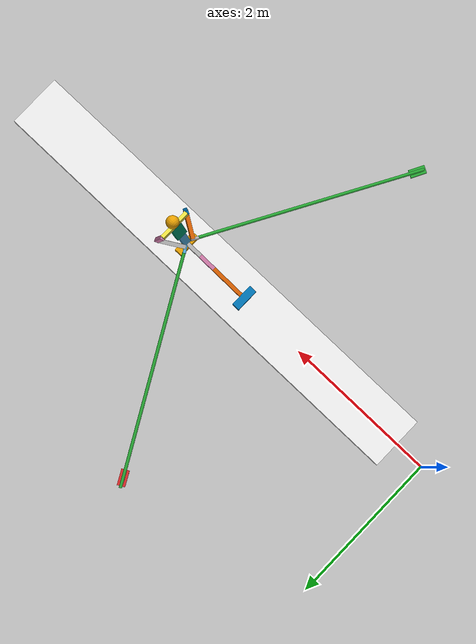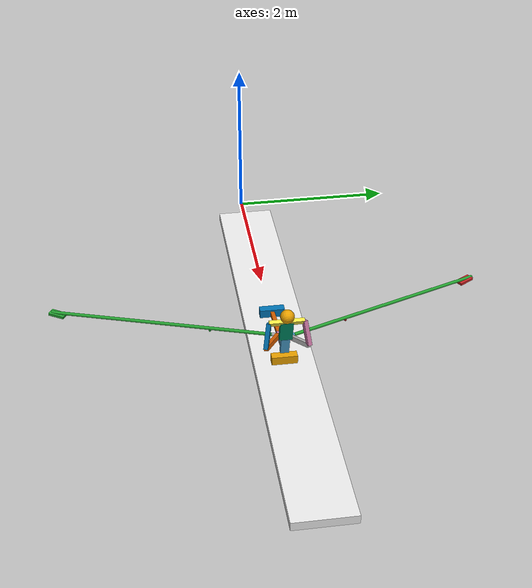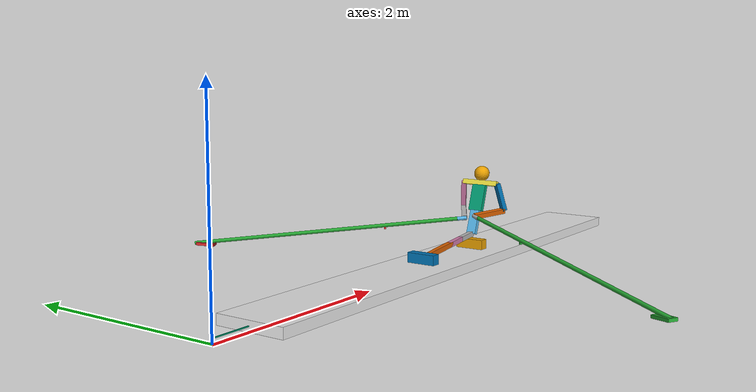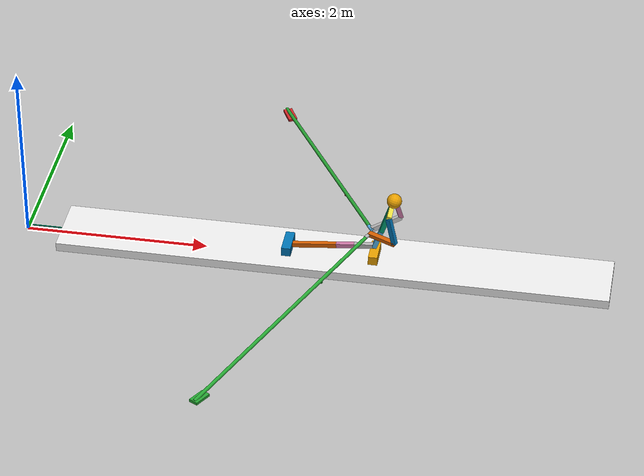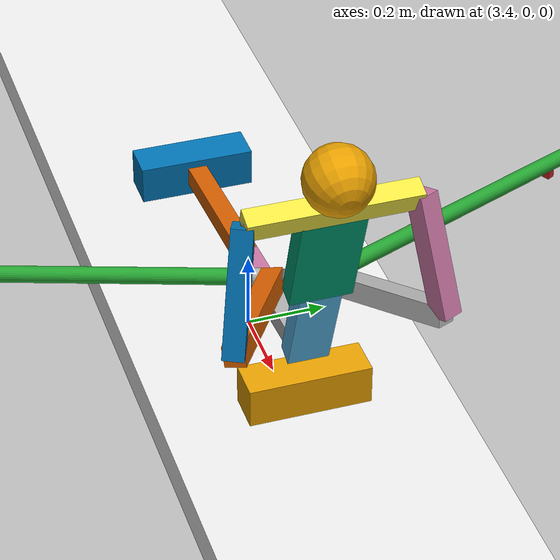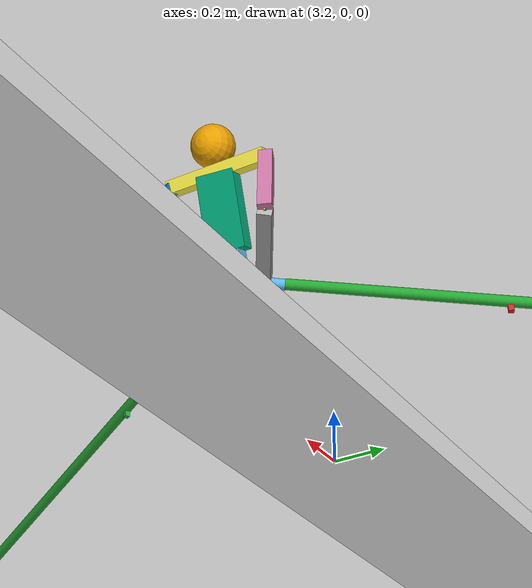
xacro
<?xml version="1.0" ?>

<robot name="myboat"  xmlns:xacro="http://www.ros.org/wiki/xacro">

  <!-- Set some joints to fixed when recreating the kinematic loops again -->
  <xacro:arg name="reconnectloops" default="false" />
  <xacro:if value="$(arg reconnectloops)">
    <xacro:property name="course_type" value="fixed" />
    <xacro:property name="sliding_type" value="fixed" />
    <xacro:property name="hip2_type" value="fixed" />
    <xacro:property name="starboard_rowlock_type" value="fixed" />
    <xacro:property name="port_rowlock_type" value="fixed" />
    <xacro:property name="starboard_oar_type" value="fixed" />
    <xacro:property name="port_oar_type" value="fixed" />
  </xacro:if>
  <xacro:unless value="$(arg reconnectloops)">
    <xacro:property name="course_type" value="prismatic" />
    <xacro:property name="sliding_type" value="prismatic" />
    <xacro:property name="hip2_type" value="revolute" />
    <xacro:property name="starboard_rowlock_type" value="revolute" />
    <xacro:property name="port_rowlock_type" value="revolute" />
    <xacro:property name="starboard_oar_type" value="revolute" />
    <xacro:property name="port_oar_type" value="revolute" />
  </xacro:unless>

  <!-- Import all Gazebo-customization elements, including Gazebo colors -->
  <xacro:include filename="$(find boot4_description)/urdf/boot.gazebo" />
  <!-- Import Rviz colors -->
  <xacro:include filename="$(find boot4_description)/urdf/materials.xacro" />

  <!-- parameters that can be configured -->
  <xacro:include filename="$(find boot4_description)/config/param.xacro" />

  <joint name="the_course" type="${course_type}">
    <parent link="world"/>
    <child link="l1"/>
    <origin xyz="0 0 0.0" rpy="0 0 0"/>
    <dynamics damping="0.005" />
    <axis xyz="1 0 0"/>
    <limit effort="101.0" lower="0" upper="100" velocity="0.5"/>
  </joint>

  <joint name="rev1" type="revolute">
    <parent link="l1"/>
    <child link="l2"/>
    <origin xyz="0.0 0 0.05" rpy="0 ${pi/2} 0"/>
    <dynamics damping="0.005" />
    <axis xyz="0 1 0"/>
    <limit effort="101.0" lower="-1" upper="1" velocity="1.0"/>
  </joint>

  <joint name="rev2" type="revolute">
    <parent link="l2"/>
    <child link="skiff"/>
    <origin xyz="0.0 0.0 0.4" rpy="${pi} ${pi/2} 0"/>
    <dynamics damping="0.005" />
    <axis xyz="0 1 0"/>
    <limit effort="101.0" lower="-1" upper="1" velocity="1.0"/>
  </joint>

  <joint name="starboard_rowlock" type="${starboard_rowlock_type}">
    <parent link="skiff"/>
    <child link="starboard_rowlock_l"/>
    <origin rpy="0.0  0.0 ${starboard_rowlock}" xyz="-3 ${span/2} 0.27"/>
    <dynamics damping="0.005" />
    <axis xyz="0 0 1"/>
    <limit effort="101.0" lower="-0.4" upper="2.0" velocity="1.0"/>
  </joint>

  <joint name="port_rowlock" type="${port_rowlock_type}">
    <parent link="skiff"/>
    <child link="port_rowlock_l"/>
    <origin rpy="0.0  0.0 ${port_rowlock}" xyz="-3 -${span/2} 0.25"/>
    <dynamics damping="0.005" />
    <axis xyz="0 0 1"/>
    <limit effort="101.0" lower="-2.0" upper="0.4" velocity="1.0"/>
  </joint>

  <joint name="starboard_oar" type="${starboard_oar_type}">
    <parent link="starboard_rowlock_l"/>
    <child link="starboard_oar_l"/>
    <origin rpy="0.0  ${pi/2+starboard_oar} -${pi/2}" xyz="0.0 0.0   0.02"/>
    <dynamics damping="0.005" />
    <axis xyz="0 1 0"/>
    <limit effort="101.0" lower="-0.4" upper="0.1" velocity="1.0"/>
  </joint>

  <joint name="port_oar" type="${port_oar_type}">
    <parent link="port_rowlock_l"/>
    <child link="port_oar_l"/>
    <origin rpy="0.0  ${pi/2+port_oar} -${pi/2}" xyz="0.0 0.0   0.02"/>
    <dynamics damping="0.005" />
    <axis xyz="0 1 0"/>
    <limit effort="101.0" lower="-0.1" upper="0.4" velocity="1.0"/>
  </joint>

  <joint name="starboard_blade" type="revolute">
    <parent link="starboard_oar_l"/>
    <child link="starboard_blade_l"/>
    <origin rpy="0  ${starboard_blade}  0.0" xyz="0.0 0.0   -${outer}"/>
    <dynamics damping="0.005" />
    <axis xyz="0 1 0"/>
    <limit effort="101.0" lower="-0.4" upper="0.4" velocity="1.0"/>
  </joint>

  <joint name="port_blade" type="revolute">
    <parent link="port_oar_l"/>
    <child link="port_blade_l"/>
    <origin rpy="0.0  ${port_blade} 0.0" xyz="0.0 0.0   ${outer}"/>
    <dynamics damping="0.005" />
    <axis xyz="0 1 0"/>
    <limit effort="101.0" lower="-0.4" upper="0.4" velocity="1.0"/>
  </joint>

  <!-- Rower joints -->

  <joint name="sk_fp" type="fixed">
    <parent link="skiff"/>
    <child link="footplate"/>
    <origin rpy="0.0  0 0.0" xyz="-2.5 0.0  0.1"/>
    <dynamics damping="0.005" />
    <limit effort="101.0" lower="-0.4" upper="0.4" velocity="1.0"/>
  </joint>

  <joint name="sliding" type="${sliding_type}">  <!-- prismatic -->
    <parent link="skiff"/>
    <child link="seat"/>
    <origin rpy="0 0 0" xyz="-3.44455 0.0 0.1"/>
    <dynamics damping="0.005" />
    <axis xyz="1 0 0"/>
    <limit effort="101.0" lower="-0.1" upper="0.8" velocity="0.5"/>
  </joint>

  <joint name="fp_ll" type="revolute">
    <parent link="footplate"/>
    <child link="lowerleg"/>
    <origin rpy="0.0  0.1071 0.0" xyz="0.0 0.0   0.0"/>
    <dynamics damping="0.005" />
    <axis xyz="0 1 0"/>
    <limit effort="101.0" lower="0.0" upper="${pi/2}" velocity="1.0"/>
  </joint>

  <joint name="knee" type="revolute">
    <parent link="lowerleg"/>
    <child link="upperleg_1"/>
    <origin rpy="0.0  0 0.0" xyz="-0.5 0.0   0.0"/>
    <dynamics damping="0.005" />
    <axis xyz="0 1 0"/>
    <limit effort="1000.0" lower="-3.1" upper="0" velocity="1.0"/>
  </joint>

  <joint name="hip1" type="revolute">
    <parent link="seat"/>
    <child link="upperleg_2"/>
    <origin rpy="0  0.1001675 0.0" xyz="0.0 0.0   0.1"/>
    <dynamics damping="0.005" />
    <axis xyz="0 1 0"/>
    <limit effort="101.0" lower="-1.6" upper="0" velocity="1.0"/>
  </joint>

  <joint name="hip2" type="${hip2_type}">
    <parent link="seat"/>
    <child link="back_low"/>
    <origin rpy="0  -${pi/2-hip2} 0.0" xyz="0.0 0.0   0.1"/>
    <dynamics damping="0.005" />
    <axis xyz="0 1 0"/>
    <limit effort="1000.0" lower="-1.0" upper="1.0" velocity="1.0"/>
  </joint>

  <joint name="back_lh" type="revolute">
    <parent link="back_low"/>
    <child link="back_high"/>
    <origin rpy="0  ${back_lh} 0.0" xyz="0.25 0.0   0.0"/>
    <dynamics damping="0.5" />
    <axis xyz="0 1 0"/>
    <limit effort="101.0" lower="0.0" upper="0.5" velocity="1.0"/>
  </joint>

  <joint name="shoulder" type="fixed">
    <parent link="back_high"/>
    <child link="shoulder_link"/>
    <origin rpy="0  0.0 0.0" xyz="0.3 0.0   0.0"/>
    <dynamics damping="0.5" />
    <limit effort="101.0" lower="0.0" upper="0.5" velocity="1.0"/>
  </joint>

  <joint name="head_joint" type="fixed">
    <parent link="shoulder_link"/>
    <child link="head"/>
    <origin rpy="0  0.0 0.0" xyz="0.2 0.0   0.0"/>
  </joint>

  <!-- Left branch from shoulder_link to starboard_oar -->

  <!-- 3D joint left shoulder -->
  <joint name="shoulder_l" type="revolute" >
    <parent link="shoulder_link" />
    <child link="left_shoulder_xx_link" />
    <origin rpy="0.0 ${-shoulder_l} 0.0" xyz="0.0 0.2   0.0"/>
    <axis xyz="0 -1 0" />
    <dynamics damping="0.005" />
    <limit effort="101.0" lower="-1.0" upper="2.2" velocity="1.0"/>
  </joint>
  <link name="left_shoulder_xx_link">
    <inertial>
      <mass value="1.0"/>
      <origin rpy="0 0 0" xyz="0 0.0 0.0"/>
      <inertia ixx="0.0000167" ixy="0" ixz="0" iyy="0.0000167" iyz="0" izz="0.0000167"/>
    </inertial>
    <visual>
      <origin rpy="0 0 0" xyz="0.0 0.0 0.0"/>
      <geometry>
        <box size="0.01 0.01 0.01"/>
      </geometry>
    </visual>
  </link>
  <joint name="shoulder_psi_l" type="revolute" >
    <parent link="left_shoulder_xx_link" />
    <child link="left_shoulder_psi_link" />
    <origin rpy="0 0.0 ${-shoulder_psi_l}" xyz="0.0 0.0   0.0"/>
    <axis xyz="0 0 -1" />
    <dynamics damping="0.005" />
    <limit effort="101.0" lower="-1.0" upper="1.0" velocity="1.0"/>
  </joint>
  <link name="left_shoulder_psi_link">
    <inertial>
      <mass value="1.0"/>
      <origin rpy="0 0 0" xyz="0 0.0 0.0"/>
      <inertia ixx="0.0000167" ixy="0" ixz="0" iyy="0.000167" iyz="0" izz="0.0000167"/>
    </inertial>
    <visual>
      <origin rpy="0 0 0" xyz="0.0 0.0 0.0"/>
      <geometry>
        <box size="0.01 0.01 0.01"/>
      </geometry>
    </visual>
  </link>
  <joint name="shoulder_theta_l" type="revolute" >
    <parent link="left_shoulder_psi_link"/>
    <child link="arm_l_upper"/>
    <origin rpy="${shoulder_theta_l} 0 0" xyz="0.0 0.0 0.0"/>
    <axis xyz="1 0 0" />
    <dynamics damping="0.005" />
    <limit effort="101.0" lower="-1.0" upper="1.0" velocity="1.0"/>
  </joint>

  <!-- 3D joint left elbow -->
  <joint name="elbow_xx_l" type="revolute" >
    <parent link="arm_l_upper"/>
    <child link="left_elbow_theta_link"/>
    <origin rpy=" ${pi} ${-(elbow_xx_l+pi/2)}  0.0" xyz="-0.3 0.0  0.0"/>
    <axis xyz="0 1 0" />
    <dynamics damping="0.5" />
    <limit effort="101.0" lower="-${pi/2+0.2}" upper="${pi/2}" velocity="1.0"/>
  </joint>
  <link name="left_elbow_theta_link">
    <inertial>
      <mass value="1.0"/>
      <origin rpy="0 0 0" xyz="0 0.0 0.0"/>
      <inertia ixx="0.0000167" ixy="0" ixz="0" iyy="0.0000167" iyz="0" izz="0.0000167"/>
    </inertial>
    <visual>
      <origin rpy="0 0 0" xyz="0.0 0.0 0.0"/>
      <geometry>
        <box size="0.01 0.01 0.01"/>
      </geometry>
    </visual>
  </link>
  <joint name="elbow_theta_l" type="revolute" >
    <parent link="left_elbow_theta_link"/>
    <child link="left_elbow_psi_link"/>
    <origin rpy="0 0.0  ${-elbow_theta_l}" xyz="-0.0 0.0  0.0"/>
    <axis xyz="0 0 -1" />
    <dynamics damping="0.5" />
    <limit effort="101.0" lower="-0.7" upper="2.0" velocity="1.0"/>
  </joint>
  <link name="left_elbow_psi_link">
    <inertial>
      <mass value="1.0"/>
      <origin rpy="0 0 0" xyz="0 0.0 0.0"/>
      <inertia ixx="0.0000167" ixy="0" ixz="0" iyy="0.0000167" iyz="0" izz="0.0000167"/>
    </inertial>
    <visual>
      <origin rpy="0 0 0" xyz="0.0 0.0 0.0"/>
      <geometry>
        <box size="0.01 0.01 0.01"/>
      </geometry>
    </visual>
  </link>
  <joint name="elbow_left" type="revolute">
    <parent link="left_elbow_psi_link"/>
    <child link="arm_l_lower"/>
    <origin rpy="${elbow_left} 0 0" xyz="-0.0 0.0 0.0"/>
    <dynamics damping="0.5" />
    <axis xyz="1 0 0"/>
    <limit effort="101.0" lower="-1.0" upper="1.0" velocity="1.0"/>
  </joint>

  <!-- 3D handle joint left -->
  <joint name="handle_left_j3" type="revolute">
    <parent link="arm_l_lower"/>
    <child link="handle_left_l2"/>
    <origin rpy="${pi/2} ${handle_left_j3} 0" xyz="-0.35 0.0 0.0"/>
    <dynamics damping="0.005" />
    <axis xyz="0 1 0"/>
    <limit effort="101.0" lower="-1" upper="1" velocity="1.0"/>
  </joint>
  <link name="handle_left_l2">
    <inertial>
      <mass value="0.1"/>
      <origin rpy="0 0 0" xyz="0 0.0 0.0"/>
      <inertia ixx="0.00000167" ixy="0" ixz="0" iyy="0.00000167" iyz="0" izz="0.00000167"/>
    </inertial>
    <visual>
      <origin rpy="0 0 0" xyz="0.0 0.0 0.0"/>
      <geometry>
        <box size="0.01 0.01 0.01"/>
      </geometry>
    </visual>
  </link>
  <joint name="handle_left_j2" type="revolute">
    <parent link="handle_left_l2"/>
    <child link="handle_left_l1"/>
    <origin rpy="${handle_left_j2} 0 0" xyz="0 0.0 0.0"/>
    <dynamics damping="0.005" />
    <axis xyz="1 0 0"/>
    <limit effort="101.0" lower="-1" upper="1" velocity="1.0"/>
  </joint>
  <link name="handle_left_l1">
    <inertial>
      <mass value="0.1"/>
      <origin rpy="0 0 0" xyz="0 0.0 0.0"/>
      <inertia ixx="0.00000167" ixy="0" ixz="0" iyy="0.00000167" iyz="0" izz="0.00000167"/>
    </inertial>
    <visual>
      <origin rpy="0 0 0" xyz="0.0 0.0 0.0"/>
      <geometry>
        <box size="0.01 0.01 0.01"/>
      </geometry>
    </visual>
  </link>
  <joint name="handle_left_j1" type="revolute">
    <parent link="handle_left_l1"/>
    <child link="starboard_handle_l"/>
    <origin rpy="0 0 ${handle_left_j1}" xyz="0 0.0 0"/>
    <dynamics damping="0.005" />
    <axis xyz="0 0 1"/>
    <limit effort="101.0" lower="-1" upper="1" velocity="1.0"/>
  </joint>

  <joint name="Ldummy_2" type="fixed">
    <parent link="starboard_handle_l"/>
    <child link="Ldummy_link_2"/>
    <origin rpy="0 0 0 " xyz="0.0 0.0 0.075"/>
    <dynamics damping="0.005" />
    <limit effort="101.0" lower="-1.0" upper="1.0" velocity="1.0"/>
  </joint>
  <link name="Ldummy_link_2">
    <inertial>
      <mass value="0.01"/>
      <origin rpy="0 0 0" xyz="0 0.0 0.0"/>
      <inertia ixx="0.000000167" ixy="0" ixz="0" iyy="0.000000167" iyz="0" izz="0.000000167"/>
    </inertial>
    <visual>
      <origin rpy="0 0 0" xyz="0.0 0.0 0.0"/>
      <geometry>
        <box size="0.01 0.01 0.01"/>
      </geometry>
    </visual>
  </link>

  <!-- in gazebo here the joint that closes the left loop -->

  <link name="Ldummy_link_1">
    <inertial>
      <mass value="0.01"/>
      <origin rpy="0 0 0" xyz="0 0.0 0.0"/>
      <inertia ixx="0.000000167" ixy="0" ixz="0" iyy="0.000000167" iyz="0" izz="0.000000167"/>
    </inertial>
    <visual>
      <origin rpy="0 0 0" xyz="0.0 0.0 0.0"/>
      <geometry>
        <box size="0.01 0.01 0.01"/>
      </geometry>
    </visual>
  </link>
  <joint name="Ldummy_1" type="fixed">
    <parent link="starboard_oar_l"/>
    <child link="Ldummy_link_1"/>
    <origin rpy="0 ${pi} ${pi/2}" xyz="0 0 ${inner-0.1} "/>
    <dynamics damping="0.005" />
    <limit effort="101.0" lower="-1.0" upper="1.0" velocity="1.0"/>
  </joint>

  <!-- Right branch from shoulder_link to port_handle -->

  <!-- 3D joint right shoulder -->
  <joint name="shoulder_r" type="revolute" >
    <parent link="shoulder_link"/>
    <child link="right_shoulder_xx_link" />
    <origin rpy="0.0 ${-shoulder_r}  0" xyz="0.0 -0.2   0.0"/>
    <axis xyz="0 -1 0" />
    <dynamics damping="0.005" />
    <limit effort="101.0" lower="-1.0" upper="2.2" velocity="1.0"/>
  </joint>
  <link name="right_shoulder_xx_link">
    <inertial>
      <mass value="1.0"/>
      <origin rpy="0 0 0" xyz="0 0.0 0.0"/>
      <inertia ixx="0.0000167" ixy="0" ixz="0" iyy="0.0000167" iyz="0" izz="0.0000167"/>
    </inertial>
    <visual>
      <origin rpy="0 0 0" xyz="0.0 0.0 0.0"/>
      <geometry>
        <box size="0.01 0.01 0.01"/>
      </geometry>
    </visual>
  </link>
  <joint name="shoulder_psi_r" type="revolute" >
    <parent link="right_shoulder_xx_link" />
    <child link="right_shoulder_psi_link" />
    <origin rpy="0 0.0 ${shoulder_psi_r}" xyz="0.0 0.0   0.0"/>
    <axis xyz="0 0 1" />
    <dynamics damping="0.005" />
    <limit effort="101.0" lower="-1.0" upper="1.0" velocity="1.0"/>
  </joint>
  <link name="right_shoulder_psi_link">
    <inertial>
      <mass value="1.0"/>
      <origin rpy="0 0 0" xyz="0 0.0 0.0"/>
      <inertia ixx="0.0000167" ixy="0" ixz="0" iyy="0.0000167" iyz="0" izz="0.0000167"/>
    </inertial>
    <visual>
      <origin rpy="0 0 0" xyz="0.0 0.0 0.0"/>
      <geometry>
        <box size="0.01 0.01 0.01"/>
      </geometry>
    </visual>
  </link>
  <joint name="shoulder_theta_r" type="revolute" >
    <parent link="right_shoulder_psi_link"/>
    <child link="arm_r_upper"/>
    <origin rpy="${-shoulder_theta_r+pi} 0 0" xyz="0.0 0.0 0.0"/>
    <axis xyz="-1 0 0" />
    <dynamics damping="0.5" />
    <limit effort="101.0" lower="-1.0" upper="1.0" velocity="1.0"/>
  </joint>

  <!-- 3D joint right elbow -->
  <joint name="elbow_xx_r" type="revolute" >
    <parent link="arm_r_upper"/>
    <child link="right_elbow_theta_link"/>
    <origin rpy="0 ${elbow_xx_r+pi/2}  0.0" xyz="-0.3 0.0  0.0"/>
    <axis xyz="0 1 0" />
    <dynamics damping="0.5" />
    <limit effort="101.0" lower="-${pi/2+0.2}" upper="${pi/2}" velocity="1.0"/>
  </joint>
  <link name="right_elbow_theta_link">
    <inertial>
      <mass value="1.0"/>
      <origin rpy="0 0 0" xyz="0 0.0 0.0"/>
      <inertia ixx="0.0000167" ixy="0" ixz="0" iyy="0.0000167" iyz="0" izz="0.0000167"/>
    </inertial>
    <visual>
      <origin rpy="0 0 0" xyz="0.0 0.0 0.0"/>
      <geometry>
        <box size="0.01 0.01 0.01"/>
      </geometry>
    </visual>
  </link>
  <joint name="elbow_theta_r" type="revolute" >
    <parent link="right_elbow_theta_link"/>
    <child link="right_elbow_psi_link"/>
    <origin rpy="0.0 0.0  ${elbow_theta_r}" xyz="0.0 0.0  0.0"/>
    <axis xyz="0 0 1" />
    <dynamics damping="0.5" />
    <limit effort="101.0" lower="-2.0" upper="1.0" velocity="1.0"/>
  </joint>
  <link name="right_elbow_psi_link">
    <inertial>
      <mass value="1.0"/>
      <origin rpy="0 0 0" xyz="0 0.0 0.0"/>
      <inertia ixx="0.0000167" ixy="0" ixz="0" iyy="0.0000167" iyz="0" izz="0.0000167"/>
    </inertial>
    <visual>
      <origin rpy="0 0 0" xyz="0.0 0.0 0.0"/>
      <geometry>
        <box size="0.01 0.01 0.01"/>
      </geometry>
    </visual>
  </link>
  <joint name="elbow_right" type="revolute">
    <parent link="right_elbow_psi_link"/>
    <child link="arm_r_lower"/>
    <origin rpy="${-elbow_right} 0 0" xyz="0.0 0.0 0.0"/>
    <dynamics damping="0.5" />
    <axis xyz="-1 0 0"/>
    <limit effort="101.0" lower="-1.0" upper="1.0" velocity="1.0"/>
  </joint>

  <!-- 3D handle joint right-->
  <joint name="handle_right_j3" type="revolute">
    <parent link="arm_r_lower"/>
    <child link="handle_right_l2"/>
    <origin rpy="${pi/2} ${-handle_right_j3} 0" xyz="-0.35 0.0 0.0"/>
    <dynamics damping="0.005" />
    <axis xyz="0 -1 0"/>
    <limit effort="101.0" lower="-1" upper="1" velocity="1.0"/>
  </joint>
  <link name="handle_right_l2">
    <inertial>
      <mass value="0.1"/>
      <origin rpy="0 0 0" xyz="0 0.0 0.0"/>
      <inertia ixx="0.00000167" ixy="0" ixz="0" iyy="0.00000167" iyz="0" izz="0.00000167"/>
    </inertial>
    <visual>
      <origin rpy="0 0 0" xyz="0.0 0.0 0.0"/>
      <geometry>
        <box size="0.01 0.01 0.01"/>
      </geometry>
    </visual>
  </link>
  <joint name="handle_right_j2" type="revolute">
    <parent link="handle_right_l2"/>
    <child link="handle_right_l1"/>
    <origin rpy="${-handle_right_j2} 0 0" xyz="0 0.0 0.0"/>
    <dynamics damping="0.005" />
    <axis xyz="-1 0 0"/>
    <limit effort="101.0" lower="-1" upper="1.2" velocity="1.0"/>
  </joint>
  <link name="handle_right_l1">
    <inertial>
      <mass value="0.1"/>
      <origin rpy="0 0 0" xyz="0 0.0 0.0"/>
      <inertia ixx="0.00000167" ixy="0" ixz="0" iyy="0.00000167" iyz="0" izz="0.00000167"/>
    </inertial>
    <visual>
      <origin rpy="0 0 0" xyz="0.0 0.0 0.0"/>
      <geometry>
        <box size="0.01 0.01 0.01"/>
      </geometry>
    </visual>
  </link>
  <joint name="handle_right_j1" type="revolute">
    <parent link="handle_right_l1"/>
    <child link="port_handle_l"/>
    <origin rpy="0 0 ${handle_right_j1}" xyz="0 0.0 0"/>
    <dynamics damping="0.005" />
    <axis xyz="0 0 1"/>
    <limit effort="101.0" lower="-1" upper="1" velocity="1.0"/>
  </joint>

  <joint name="Rdummy_2" type="fixed">
    <parent link="port_handle_l"/>
    <child link="Rdummy_link_2"/>
    <origin rpy="${pi} 0  0.0" xyz="0.0 0.0 -0.075"/>
    <dynamics damping="0.005" />
    <limit effort="101.0" lower="-1.0" upper="1.0" velocity="1.0"/>
  </joint>
  <link name="Rdummy_link_2">
    <inertial>
      <mass value="0.01"/>
      <origin rpy="0 0 0" xyz="0 0.0 0.0"/>
      <inertia ixx="0.000000167" ixy="0" ixz="0" iyy="0.000000167" iyz="0" izz="0.000000167"/>
    </inertial>
    <visual>
      <origin rpy="0 0 0" xyz="0.0 0.0 0.0"/>
      <geometry>
        <box size="0.01 0.01 0.01"/>
      </geometry>
    </visual>
  </link>

  <!-- in gazebo here the joint that closes the right loop -->

  <link name="Rdummy_link_1">
    <inertial>
      <mass value="0.01"/>
      <origin rpy="0 0 0" xyz="0 0.0 0.0"/>
      <inertia ixx="0.000000167" ixy="0" ixz="0" iyy="0.000000167" iyz="0" izz="0.000000167"/>
    </inertial>
    <visual>
      <origin rpy="0 0 0" xyz="0.0 0.0 0.0"/>
      <geometry>
        <box size="0.01 0.01 0.01"/>
      </geometry>
    </visual>
  </link>
  <joint name="Rdummy_1" type="fixed">
    <parent link="port_oar_l"/>
    <child link="Rdummy_link_1"/>
    <origin rpy="0 0 -${pi/2}" xyz="0.0 0.0 -${inner-0.1}"/>
    <dynamics damping="0.005" />
    <limit effort="101.0" lower="-1.0" upper="1.0" velocity="1.0"/>
  </joint>

  <!-- Boat links -->

  <link name="world"/>

  <link name="l1">
    <inertial>
      <mass value="0.01"/>
      <origin rpy="0 0 0" xyz="0 0.0 0.025"/>
      <inertia ixx="0.000033" ixy="0" ixz="0" iyy="0.000033" iyz="0" izz="0.000000167"/>
    </inertial>
    <visual>
      <origin rpy="0 0 0" xyz="0.0 0.0 0.025"/>
      <geometry>
        <box size="0.01 0.01 0.05"/>
      </geometry>
    </visual>
  </link>

  <link name="l2">
    <inertial>
      <mass value="0.01"/>
      <origin rpy="0 0 0" xyz="0 0.0 0.2"/>
      <inertia ixx="0.000133" ixy="0" ixz="0" iyy="000133" iyz="0" izz="0.000000167"/>
    </inertial>
    <visual>
      <origin rpy="0 0 0" xyz="0.0 0.0 0.2"/>
      <geometry>
        <box size="0.01 0.01 0.40"/>
      </geometry>
    </visual>
  </link>

  <link name="skiff">
    <inertial>
      <mass value="${15 + weight}"/>   <!-- boat plus roeier -->
      <origin rpy="0 0 0" xyz="-3 0.0 0.00"/>
      <inertia ixx="3.2" ixy="0" ixz="0" iyy="225" iyz="0" izz="228"/>   <!-- weight= 60 -->
    </inertial>
    <collision>
      <origin rpy="0 0 0" xyz="-3 0.0   0.00"/>
      <geometry>
        <box size="6.0 0.7 0.1"/>
      </geometry>
    </collision>
    <visual>
      <!-- should be a nice skull shape including riggers-->
      <origin rpy="0 0 0" xyz="-3 0.0   0.00"/>
      <geometry>
        <box size="6.0 0.7 0.1"/>
      </geometry>
    </visual>
  </link>

  <link name="starboard_rowlock_l">
    <inertial>
      <mass value="0.1"/>
      <origin rpy="0 0 0" xyz="0.0 0.0 0.0"/>
      <inertia ixx="0.000017" ixy="0" ixz="0" iyy="0.000017" iyz="0" izz="0.000007"/>
    </inertial>
    <collision>
      <origin rpy="0 0 0" xyz="0.0 0.0   0.0"/>
      <geometry>
        <box size="0.02 0.02 0.04"/>
      </geometry>
    </collision>
    <visual>
      <origin rpy="0 0 0" xyz="0.0 0.0   0.0"/>
      <geometry>
        <box size="0.02 0.02 0.04"/>
      </geometry>
    </visual>
  </link>

  <link name="port_rowlock_l">
    <inertial>
      <mass value="0.1"/>
      <origin rpy="0 0 0" xyz="0.0 0.0 0.0"/>
      <inertia ixx="0.000017" ixy="0" ixz="0" iyy="0.000017" iyz="0" izz="0.000007"/>
    </inertial>
    <collision>
      <origin rpy="0 0 0" xyz="0.0 0.0   0.0"/>
      <geometry>
        <box size="0.02 0.02 0.04"/>
      </geometry>
    </collision>
    <visual>
      <origin rpy="0 0 0" xyz="0.0 0.0   0.0"/>
      <geometry>
        <box size="0.02 0.02 0.04"/>
      </geometry>
    </visual>
  </link>

  <link name="starboard_oar_l">
    <inertial>
      <mass value="1.0"/>
      <origin rpy="0 0 0" xyz="0 0 -${(outer-inner)/2+0.1}"/>
      <inertia ixx="0.6" ixy="0" ixz="0" iyy="0.6" iyz="0" izz="0.0002"/>
    </inertial>
    <collision>
      <origin rpy="0 0 0" xyz="0   0   -${(outer-inner)/2+0.1}"/>
      <geometry>
        <cylinder length="${inner+outer -0.6}" radius="0.02"/>
      </geometry>
    </collision>
    <visual>
      <origin rpy="0 0 0" xyz="0   0.0   -${(outer-inner)/2+0.1}"/>
      <geometry>
        <cylinder length="${inner+outer}" radius="0.02"/>
      </geometry>
    </visual>
  </link>

  <link name="starboard_handle_l">
    <inertial>
      <mass value="1.0"/>
      <origin rpy="0 0 0" xyz="0 0 0.025"/>
      <inertia ixx="0.6" ixy="0" ixz="0" iyy="0.6" iyz="0" izz="0.0002"/>
    </inertial>
    <visual>
      <origin rpy="0 0 0" xyz="0   0.0   0.025"/>
      <geometry>
        <cylinder length="0.1" radius="0.02"/>
      </geometry>
    </visual>
  </link>

  <link name="port_oar_l">
    <inertial>
      <mass value="1.0"/>
      <origin rpy="0 0 0" xyz="0 0 ${(outer-inner)/2+0.1}"/>
      <inertia ixx="0.6" ixy="0" ixz="0" iyy="0.6" iyz="0" izz="0.0002"/>
    </inertial>
    <collision>
      <origin rpy="0 0 0" xyz="0   0   ${(outer-inner)/2+0.1}"/>
      <geometry>
        <cylinder length="${inner+outer-0.6}" radius="0.02"/>  <!-- -0.6 to prevent collissions  -->
      </geometry>
    </collision>
    <visual>
      <origin rpy="0 0 0" xyz="0   0   ${(outer-inner)/2+0.1}"/>
      <geometry>
        <cylinder length="${inner+outer}" radius="0.02"/>
      </geometry>
    </visual>
  </link>

  <link name="port_handle_l">
    <inertial>
      <mass value="1.0"/>
      <origin rpy="0 0 0" xyz="0 0 -0.025"/>
      <inertia ixx="0.6" ixy="0" ixz="0" iyy="0.6" iyz="0" izz="0.0002"/>
    </inertial>
    <visual>
      <origin rpy="0 0 0" xyz="0   0   -0.025"/>
      <geometry>
        <cylinder length="0.1" radius="0.02"/>
      </geometry>
    </visual>
  </link>

  <link name="starboard_blade_l">
    <inertial>
      <mass value="1.0"/>
      <origin rpy="0 -1.4 0" xyz="0.02 0 -0.02"/>
      <inertia ixx="0.0009" ixy="0" ixz="0" iyy="0.0034" iyz="0" izz="0.004"/>
    </inertial>
    <collision>
      <origin rpy="0 -1.4 0" xyz="0.02    0   -0.02"/>
      <geometry>
        <box size="0.2 0.1 0.03"/>
      </geometry>
    </collision>
    <visual>
      <origin rpy="0 -1.4 0" xyz="0.02    0   -0.02"/>
      <geometry>
        <box size="0.2 0.1 0.03"/>
      </geometry>
    </visual>
  </link>

  <link name="port_blade_l">
    <inertial>
      <mass value="1.0"/>
      <origin rpy="0 1.4 0" xyz="0.02 0 -0.02"/>
      <inertia ixx="0.0009" ixy="0" ixz="0" iyy="0.0034" iyz="0" izz="0.004"/>
    </inertial>
    <collision>
      <origin rpy="0 1.4 0" xyz="0.02    0   -0.02"/>
      <geometry>
        <box size="0.2 0.1 0.03"/>
      </geometry>
    </collision>
    <visual>
      <origin rpy="0 1.4 0" xyz="0.02    0.0  -0.02"/>
      <geometry>
        <box size="0.2 0.1 0.03"/>
      </geometry>
    </visual>
  </link>

  <!-- Rower links -->

  <link name="footplate">
    <inertial>
      <mass value="0.1"/>
      <origin rpy="0 0 0" xyz="0 0.0 0.0"/>
      <inertia ixx="0.0008" ixy="0" ixz="0" iyy="0.000166" iyz="0" izz="0.0008"/>
    </inertial>
    <collision>
      <origin rpy="0 0 0" xyz="0 0.0   0.0"/>
      <geometry>
        <box size="0.1 0.3 0.1"/>
      </geometry>
    </collision>
    <visual>
      <origin rpy="0 0 0" xyz="0  0.0   0.0"/>
      <geometry>
        <box size="0.1 0.3 0.1"/>
      </geometry>
    </visual>
  </link>

  <link name="lowerleg">
    <inertial>
      <mass value="1.0"/>
      <origin rpy="0 0 0" xyz="-${lowerleg/2} 0.0 0.0"/>
      <inertia ixx="0.00041" ixy="0" ixz="0" iyy="0.021" iyz="0" izz="0.021"/>
    </inertial>
    <collision>
      <origin rpy="0 0 0" xyz="-${lowerleg/2} 0.0   0.0"/>
      <geometry>
        <box size="${lowerleg} 0.05 0.05"/>
      </geometry>
    </collision>
    <visual>
      <origin rpy="0 0 0" xyz="-${lowerleg/2} 0.0   0.0"/>
      <geometry>
        <box size="${lowerleg} 0.05 0.05"/>
      </geometry>
    </visual>
  </link>

  <!-- upperleg split into two parts to avoid a kinematic loop in the urdf
       the loop will be close in gazebo -->
  <link name="upperleg_1">
    <inertial>
      <mass value="1.0"/>
      <origin rpy="0 0 0" xyz="-${upperleg/4} 0.0 0.0"/>
      <inertia ixx="0.00041" ixy="0" ixz="0" iyy="0.0054" iyz="0" izz="0.0054"/>
    </inertial>
    <collision>
      <origin rpy="0 0 0" xyz="-${upperleg/4}  0.0   0.0"/>
      <geometry>
        <box size="${upperleg/2} 0.05 0.05"/>
      </geometry>
    </collision>
    <visual>
      <origin rpy="0 0 0" xyz="-${upperleg/4}   0.0   0.0"/>
      <geometry>
        <box size="${upperleg/2} 0.05 0.05"/>
      </geometry>
    </visual>
  </link>

  <link name="upperleg_2">
    <inertial>
      <mass value="1.0"/>
      <origin rpy="0 0 0" xyz="${upperleg/4} 0.0 0.0"/>
      <inertia ixx="0.00041" ixy="0" ixz="0" iyy="0.0054" iyz="0" izz="0.0054"/>
    </inertial>
    <collision>
      <origin rpy="0 0 0" xyz="${upperleg/4}  0.0   0.0"/>
      <geometry>
        <box size="${upperleg/2} 0.05 0.05"/>
      </geometry>
    </collision>
    <visual>
      <origin rpy="0 0 0" xyz="${upperleg/4} 0.0   0.0"/>
      <geometry>
        <box size="${upperleg/2} 0.05 0.05"/>
      </geometry>
    </visual>
  </link>

  <link name="seat">
    <inertial>
      <mass value="0.1"/>
      <origin rpy="0 0 0" xyz="0.0 0.0 0.0"/>
      <inertia ixx="0.001" ixy="0" ixz="0" iyy="0.0005" iyz="0" izz="0.001"/>
    </inertial>
    <collision>
      <origin rpy="0 0 0" xyz="0.0 0.0   0.0"/>
      <geometry>
        <box size="0.1 0.3 0.1"/>
      </geometry>
    </collision>
    <visual>
      <origin rpy="0 0 0" xyz="0.0 0.0   0.0"/>
      <geometry>
        <box size="0.1 0.3 0.1"/>
      </geometry>
    </visual>
  </link>

  <link name="back_low">
    <inertial>
      <mass value="10.0"/>
      <origin rpy="0 0 0" xyz="0.125 0.0 0.0"/>
      <inertia ixx="0.01" ixy="0" ixz="0" iyy="0.054" iyz="0" izz="0.06"/>
    </inertial>
    <collision>
      <origin rpy="0 0 0" xyz="0.125  0.0   0.0"/>
      <geometry>
        <box size="0.25 0.1 0.05"/>
      </geometry>
    </collision>
    <visual>
      <origin rpy="0 0 0" xyz="0.125 0.0   0.0"/>
      <geometry>
        <box size="0.25 0.1 0.05"/>
      </geometry>
    </visual>
  </link>

  <link name="back_high">
    <inertial>
      <mass value="10.0"/>
      <origin rpy="0 0 0" xyz="0.15 0.0 0.0"/>
      <inertia ixx="0.02" ixy="0" ixz="0" iyy="0.077" iyz="0" izz="0.094"/>
    </inertial>
    <collision>
      <origin rpy="0 0 0" xyz="0.15  0.0   0.0"/>
      <geometry>
        <box size="0.3 0.15 0.05"/>
      </geometry>
    </collision>
    <visual>
      <origin rpy="0 0 0" xyz="0.15 0.0   0.0"/>
      <geometry>
        <box size="0.3 0.15 0.05"/>
      </geometry>
    </visual>
  </link>

  <!-- Shoulder in 3 parts to break the kinematic loops -->
  <link name="shoulder_link">
    <inertial>
      <mass value="1.0"/>
      <origin rpy="0 0 0" xyz="0.0 0.0 0.0"/>
      <inertia ixx="0.013" ixy="0" ixz="0" iyy="0.0004" iyz="0" izz="0.013"/>
    </inertial>
    <collision>
      <origin rpy="0 0 0" xyz="0.0  0.0   0.0"/>
      <geometry>
        <box size="0.05 0.4 0.05"/>
      </geometry>
    </collision>
    <visual>
      <origin rpy="0 0 0" xyz="0.0 0.0   0.0"/>
      <geometry>
        <box size="0.05 0.4 0.05"/>
      </geometry>
    </visual>
  </link>

  <link name="arm_l_upper">
    <inertial>
      <mass value="1.0"/>
      <origin rpy="0 0 0" xyz="-0.15 0.0 0.0"/>
      <inertia ixx="0.00041" ixy="0" ixz="0" iyy="0.01" iyz="0" izz="0.01"/>
    </inertial>
    <collision>
      <origin rpy="0 0 0" xyz="-0.15 0.0   0.0"/>
      <geometry>
        <box size="0.30 0.05 0.05"/>
      </geometry>
    </collision>
    <visual>
      <origin rpy="0 0 0" xyz="-0.15 0.0   0.0"/>
      <geometry>
        <box size="0.30 0.05 0.05"/>
      </geometry>
    </visual>
  </link>

  <link name="arm_l_lower">
    <inertial>
      <mass value="1.0"/>
      <origin rpy="0 0 0" xyz="-0.175 0.0 0.0"/>
      <inertia ixx="0.00041" ixy="0" ixz="0" iyy="0.0135" iyz="0" izz="0.0135"/>
    </inertial>
    <collision>
      <origin rpy="0 0 0" xyz="-0.175 0.0   0.0"/>
      <geometry>
        <box size="0.35 0.05 0.05"/>
      </geometry>
    </collision>
    <visual>
      <origin rpy="0 0 0" xyz="-0.175 0.0   0.0"/>
      <geometry>
        <box size="0.35 0.05 0.05"/>
      </geometry>
    </visual>
  </link>

  <link name="arm_r_upper">
    <inertial>
      <mass value="1.0"/>
      <origin rpy="0 0 0" xyz="-0.15 0.0 0.0"/>
      <inertia ixx="0.0004" ixy="0" ixz="0" iyy="0.01" iyz="0" izz="0.01"/>
    </inertial>
    <collision>
      <origin rpy="0 0 0" xyz="-0.15 0.0   0.0"/>
      <geometry>
        <box size="0.3 0.05 0.05"/>
      </geometry>
    </collision>
    <visual>
      <origin rpy="0 0 0" xyz="-0.15 0.0   0.0"/>
      <geometry>
        <box size="0.3 0.05 0.05"/>
      </geometry>
    </visual>
  </link>

  <link name="arm_r_lower">
    <inertial>
      <mass value="1.0"/>
      <origin rpy="0 0 0" xyz="-0.175 0.0 0.0"/>
      <inertia ixx="0.0004" ixy="0" ixz="0" iyy="0.0035" iyz="0" izz="0.0035"/>
    </inertial>
    <collision>
      <origin rpy="0 0 0" xyz="-0.175 0.0   0.0"/>
      <geometry>
        <box size="0.35 0.05 0.05"/>
      </geometry>
    </collision>
    <visual>
      <origin rpy="0 0 0" xyz="-0.175 0.0   0.0"/>
      <geometry>
        <box size="0.35 0.05 0.05"/>
      </geometry>
    </visual>
  </link>

  <link name="head">
    <inertial>
      <mass value="5.0"/>
      <origin rpy="0 0 0" xyz="-0.1 0.0 0.0"/>
      <inertia ixx="0.0128" ixy="0" ixz="0" iyy="0.0128" iyz="0" izz="0.0128"/>
    </inertial>
    <collision>
      <origin rpy="0 0 0" xyz="-0.1 0.0   0.0"/>
      <geometry>
        <sphere radius="0.08"/>
      </geometry>
    </collision>
    <visual>
      <origin rpy="0 0 0" xyz="-0.1 0.0   0.0"/>
      <geometry>
        <sphere radius="0.08"/>
      </geometry>
    </visual>
  </link>

<!-- Boat transmissions -->

  <transmission name="tran1">
    <type>transmission_interface/SimpleTransmission</type>
    <joint name="starboard_rowlock">
      <hardwareInterface>hardware_interface/EffortJointInterface</hardwareInterface>
    </joint>
    <actuator name="motor1">
      <mechanicalReduction>1</mechanicalReduction>
    </actuator>
  </transmission>

  <transmission name="tran2">
    <type>transmission_interface/SimpleTransmission</type>
    <joint name="port_rowlock">
      <hardwareInterface>hardware_interface/EffortJointInterface</hardwareInterface>
    </joint>
    <actuator name="motor2">
      <mechanicalReduction>1</mechanicalReduction>
    </actuator>
  </transmission>

  <transmission name="tran3">
    <type>transmission_interface/SimpleTransmission</type>
    <joint name="starboard_oar">
      <hardwareInterface>hardware_interface/EffortJointInterface</hardwareInterface>
    </joint>
    <actuator name="motor3">
      <mechanicalReduction>1</mechanicalReduction>
    </actuator>
  </transmission>

  <transmission name="tran4">
    <type>transmission_interface/SimpleTransmission</type>
    <joint name="port_oar">
      <hardwareInterface>hardware_interface/EffortJointInterface</hardwareInterface>
    </joint>
    <actuator name="motor4">
      <mechanicalReduction>1</mechanicalReduction>
    </actuator>
  </transmission>

  <transmission name="tran5">
    <type>transmission_interface/SimpleTransmission</type>
    <joint name="starboard_blade">
      <hardwareInterface>hardware_interface/EffortJointInterface</hardwareInterface>
    </joint>
    <actuator name="motor5">
      <mechanicalReduction>1</mechanicalReduction>
    </actuator>
  </transmission>

  <transmission name="tran6">
    <type>transmission_interface/SimpleTransmission</type>
    <joint name="port_blade">
      <hardwareInterface>hardware_interface/EffortJointInterface</hardwareInterface>
    </joint>
    <actuator name="motor6">
      <mechanicalReduction>1</mechanicalReduction>
    </actuator>
  </transmission>

  <!-- Rower transmissions -->

  <transmission name="tran7">
    <type>transmission_interface/SimpleTransmission</type>
    <joint name="knee">
      <hardwareInterface>hardware_interface/EffortJointInterface</hardwareInterface>
    </joint>
    <actuator name="motor7">
      <mechanicalReduction>1</mechanicalReduction>
    </actuator>
  </transmission>

  <transmission name="tran8">
    <type>transmission_interface/SimpleTransmission</type>
    <joint name="hip1">
      <hardwareInterface>hardware_interface/EffortJointInterface</hardwareInterface>
    </joint>
    <actuator name="motor8">
      <mechanicalReduction>1</mechanicalReduction>
    </actuator>
  </transmission>

  <transmission name="tran9">
    <type>transmission_interface/SimpleTransmission</type>
    <joint name="hip2">
      <hardwareInterface>hardware_interface/EffortJointInterface</hardwareInterface>
    </joint>
    <actuator name="motor9">
      <mechanicalReduction>1</mechanicalReduction>
    </actuator>
  </transmission>

  <transmission name="tran10">
    <type>transmission_interface/SimpleTransmission</type>
    <joint name="back_lh">
      <hardwareInterface>hardware_interface/EffortJointInterface</hardwareInterface>
    </joint>
    <actuator name="motor10">
      <mechanicalReduction>1</mechanicalReduction>
    </actuator>
  </transmission>

  <transmission name="tran11">
    <type>transmission_interface/SimpleTransmission</type>
    <joint name="shoulder_l">
      <hardwareInterface>hardware_interface/EffortJointInterface</hardwareInterface>
    </joint>
    <actuator name="motor11">
      <mechanicalReduction>1</mechanicalReduction>
    </actuator>
  </transmission>

  <transmission name="tran12">
    <type>transmission_interface/SimpleTransmission</type>
    <joint name="shoulder_psi_l">
      <hardwareInterface>hardware_interface/EffortJointInterface</hardwareInterface>
    </joint>
    <actuator name="motor12">
      <mechanicalReduction>1</mechanicalReduction>
    </actuator>
  </transmission>

  <transmission name="tran13">
    <type>transmission_interface/SimpleTransmission</type>
    <joint name="shoulder_theta_l">
      <hardwareInterface>hardware_interface/EffortJointInterface</hardwareInterface>
    </joint>
    <actuator name="motor13">
      <mechanicalReduction>1</mechanicalReduction>
    </actuator>
  </transmission>

  <transmission name="tran14">
    <type>transmission_interface/SimpleTransmission</type>
    <joint name="elbow_theta_l">
      <hardwareInterface>hardware_interface/EffortJointInterface</hardwareInterface>
    </joint>
    <actuator name="motor14">
      <mechanicalReduction>1</mechanicalReduction>
    </actuator>
  </transmission>

  <transmission name="tran15">
    <type>transmission_interface/SimpleTransmission</type>
    <joint name="elbow_left">
      <hardwareInterface>hardware_interface/EffortJointInterface</hardwareInterface>
    </joint>
    <actuator name="motor15">
      <mechanicalReduction>1</mechanicalReduction>
    </actuator>
  </transmission>

  <transmission name="tran16">
    <type>transmission_interface/SimpleTransmission</type>
    <joint name="handle_left_j1">
      <hardwareInterface>hardware_interface/EffortJointInterface</hardwareInterface>
    </joint>
    <actuator name="motor16">
      <mechanicalReduction>1</mechanicalReduction>
    </actuator>
  </transmission>

  <transmission name="tran17">
    <type>transmission_interface/SimpleTransmission</type>
    <joint name="handle_left_j2">
      <hardwareInterface>hardware_interface/EffortJointInterface</hardwareInterface>
    </joint>
    <actuator name="motor17">
      <mechanicalReduction>1</mechanicalReduction>
    </actuator>
  </transmission>

  <transmission name="tran18">
    <type>transmission_interface/SimpleTransmission</type>
    <joint name="handle_left_j3">
      <hardwareInterface>hardware_interface/EffortJointInterface</hardwareInterface>
    </joint>
    <actuator name="motor18">
      <mechanicalReduction>1</mechanicalReduction>
    </actuator>
  </transmission>

  <transmission name="tran19">
    <type>transmission_interface/SimpleTransmission</type>
    <joint name="shoulder_r">
      <hardwareInterface>hardware_interface/EffortJointInterface</hardwareInterface>
    </joint>
    <actuator name="motor19">
      <mechanicalReduction>1</mechanicalReduction>
    </actuator>
  </transmission>

  <transmission name="tran20">
    <type>transmission_interface/SimpleTransmission</type>
    <joint name="shoulder_psi_r">
      <hardwareInterface>hardware_interface/EffortJointInterface</hardwareInterface>
    </joint>
    <actuator name="motor20">
      <mechanicalReduction>1</mechanicalReduction>
    </actuator>
  </transmission>

  <transmission name="tran21">
    <type>transmission_interface/SimpleTransmission</type>
    <joint name="shoulder_theta_r">
      <hardwareInterface>hardware_interface/EffortJointInterface</hardwareInterface>
    </joint>
    <actuator name="motor21">
      <mechanicalReduction>1</mechanicalReduction>
    </actuator>
  </transmission>

  <transmission name="tran22">
    <type>transmission_interface/SimpleTransmission</type>
    <joint name="elbow_theta_r">
      <hardwareInterface>hardware_interface/EffortJointInterface</hardwareInterface>
    </joint>
    <actuator name="motor22">
      <mechanicalReduction>1</mechanicalReduction>
    </actuator>
  </transmission>

  <transmission name="tran23">
    <type>transmission_interface/SimpleTransmission</type>
    <joint name="elbow_right">
      <hardwareInterface>hardware_interface/EffortJointInterface</hardwareInterface>
    </joint>
    <actuator name="motor23">
      <mechanicalReduction>1</mechanicalReduction>
    </actuator>
  </transmission>

  <transmission name="tran24">
    <type>transmission_interface/SimpleTransmission</type>
    <joint name="handle_right_j1">
      <hardwareInterface>hardware_interface/EffortJointInterface</hardwareInterface>
    </joint>
    <actuator name="motor24">
      <mechanicalReduction>1</mechanicalReduction>
    </actuator>
  </transmission>

  <transmission name="tran25">
    <type>transmission_interface/SimpleTransmission</type>
    <joint name="handle_right_j2">
      <hardwareInterface>hardware_interface/EffortJointInterface</hardwareInterface>
    </joint>
    <actuator name="motor25">
      <mechanicalReduction>1</mechanicalReduction>
    </actuator>
  </transmission>

  <transmission name="tran26">
    <type>transmission_interface/SimpleTransmission</type>
    <joint name="handle_right_j3">
      <hardwareInterface>hardware_interface/EffortJointInterface</hardwareInterface>
    </joint>
    <actuator name="motor26">
      <mechanicalReduction>1</mechanicalReduction>
    </actuator>
  </transmission>

  <transmission name="tran27">
    <type>transmission_interface/SimpleTransmission</type>
    <joint name="elbow_xx_l">
      <hardwareInterface>hardware_interface/EffortJointInterface</hardwareInterface>
    </joint>
    <actuator name="motor27">
      <mechanicalReduction>1</mechanicalReduction>
    </actuator>
  </transmission>

  <transmission name="tran28">
    <type>transmission_interface/SimpleTransmission</type>
    <joint name="elbow_xx_r">
      <hardwareInterface>hardware_interface/EffortJointInterface</hardwareInterface>
    </joint>
    <actuator name="motor28">
      <mechanicalReduction>1</mechanicalReduction>
    </actuator>
  </transmission>

</robot>

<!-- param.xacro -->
<robot xmlns:xacro="http://www.ros.org/wiki/xacro">

<!--
    Describes parameters of the boot model
        template version
-->

<!-- boat  -->
<xacro:property name="span" value="1.6"/>

<!-- oar -->
<xacro:property name="inner" value="0.87"/>  <!-- length inclusive 0.1 meter handle -->
<xacro:property name="outer" value="2.00"/>

<!--  rower -->
<xacro:property name="weight" value="70"/>
<xacro:property name="lowerleg" value="0.53"/>
<xacro:property name="upperleg" value="0.45"/>
  <!-- don't change leg for the moment, connection has don by hand -->
<xacro:property name="back" value="0.60"/>
<xacro:property name="shoulder" value="0.37"/>
<xacro:property name="upperarm" value="0.35"/>
<xacro:property name="lowerarm" value="0.35"/>

<!--
 lengths of links, musle power?
-->

<!-- Initial position of links that might change-->

<xacro:property name="starboard_rowlock" value="-0.4939"/>
<xacro:property name="port_rowlock" value="0.4939"/>
<xacro:property name="starboard_oar" value="-0.1258"/>
<xacro:property name="port_oar" value="0.1159"/>
<xacro:property name="starboard_blade" value="0.02"/>
<xacro:property name="port_blade" value="0.0"/>
<xacro:property name="hip2" value="-0.329"/>
<xacro:property name="back_lh" value="0.0182"/>

<xacro:property name="shoulder_l" value="-0.5674"/>
<xacro:property name="shoulder_psi_l" value="0.1546"/>
<xacro:property name="shoulder_theta_l" value="-0.3847"/>
<xacro:property name="elbow_xx_l" value="0.1878"/>
<xacro:property name="elbow_theta_l" value="0.1514"/>
<xacro:property name="elbow_left" value="0.2139"/>
<xacro:property name="handle_left_j3" value="0.0805"/>
<xacro:property name="handle_left_j2" value="-0.0566"/>
<xacro:property name="handle_left_j1" value="-0.0905"/>

<xacro:property name="shoulder_r" value="-0.5573"/>
<xacro:property name="shoulder_psi_r" value="0.1429"/>
<xacro:property name="shoulder_theta_r" value="-0.3884"/>
<xacro:property name="elbow_xx_r" value="0.0939"/>
<xacro:property name="elbow_theta_r" value="0.1502"/>
<xacro:property name="elbow_right" value="0.1662"/>
<xacro:property name="handle_right_j3" value="0.0429"/>
<xacro:property name="handle_right_j2" value="-0.0329"/>
<xacro:property name="handle_right_j1" value="-0.2017"/>

</robot>
